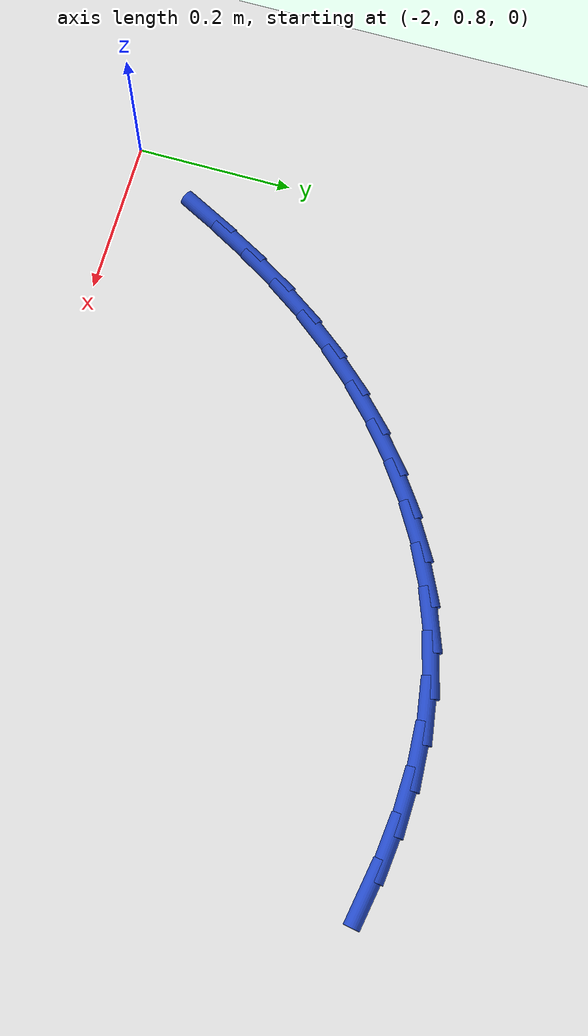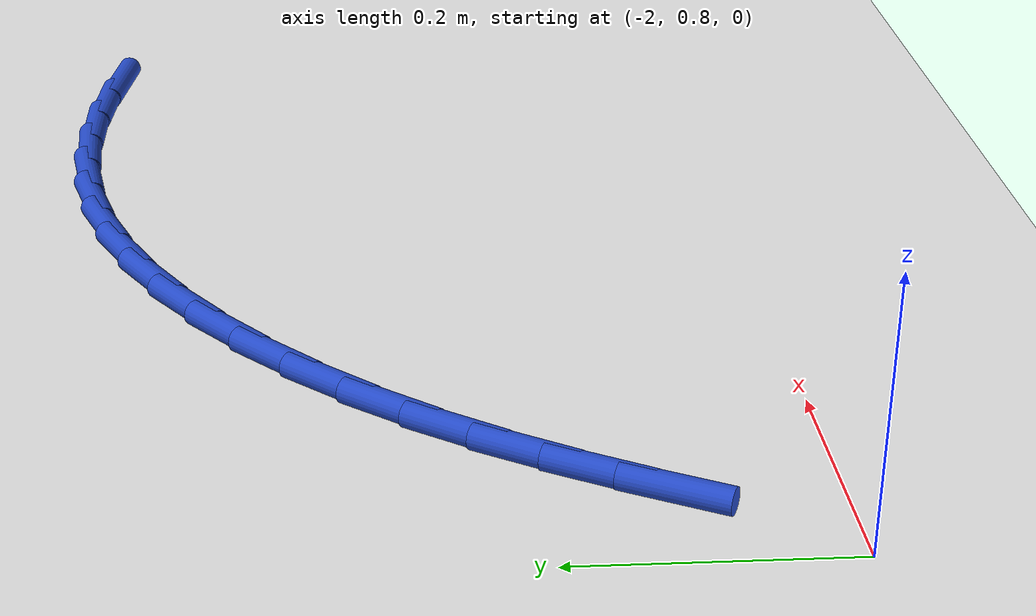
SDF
<sdf version="1.6">
 <world name="default">
  <model name="ground_plane">
   <static>1</static>
   <link name="link">
    <collision name="collision">
     <geometry><plane><normal>0 0 1</normal><size>100 100</size></plane></geometry>
     <surface><friction><ode><mu>100</mu><mu2>50</mu2></ode></friction></surface>
    </collision>
    <visual name="visual">
     <cast_shadows>0</cast_shadows>
     <geometry><plane><normal>0 0 1</normal><size>100 100</size></plane></geometry>
     <material>
      <script><uri>file://media/materials/scripts/gazebo.material</uri><name>Gazebo/WhiteGlow</name></script>
     </material>
    </visual>
   </link>
  </model>
  <model name="line">
   <link name="link_35">
    <pose>-1.183106454513405 1.3187488342028129 0.01 0 1.57 -0.17814583061397482</pose>
    <collision name="collision">
     <geometry><cylinder><radius>0.01</radius><length>0.08</length></cylinder></geometry>
    </collision>
    <visual name="visual">
     <material>
      <script><name>Gazebo/Blue</name><uri>file://media/materials/scripts/gazebo.material</uri></script>
     </material>
     <geometry><cylinder><radius>0.01</radius><length>0.08</length></cylinder></geometry>
    </visual>
   </link>
   <link name="link_36">
    <pose>-1.2368201212194503 1.3284202273314685 0.01 0 1.57 -0.10851438034527704</pose>
    <collision name="collision">
     <geometry><cylinder><radius>0.01</radius><length>0.08</length></cylinder></geometry>
    </collision>
    <visual name="visual">
     <material>
      <script><name>Gazebo/Blue</name><uri>file://media/materials/scripts/gazebo.material</uri></script>
     </material>
     <geometry><cylinder><radius>0.01</radius><length>0.08</length></cylinder></geometry>
    </visual>
   </link>
   <link name="link_37">
    <pose>-1.2904987305142765 1.3342681000192689 0.01 0 1.57 -0.0304399568864086</pose>
    <collision name="collision">
     <geometry><cylinder><radius>0.01</radius><length>0.08</length></cylinder></geometry>
    </collision>
    <visual name="visual">
     <material>
      <script><name>Gazebo/Blue</name><uri>file://media/materials/scripts/gazebo.material</uri></script>
     </material>
     <geometry><cylinder><radius>0.01</radius><length>0.08</length></cylinder></geometry>
    </visual>
   </link>
   <link name="link_38">
    <pose>-1.3438997265203696 1.3358941262868336 0.01 0 1.57 0.056560247076168094</pose>
    <collision name="collision">
     <geometry><cylinder><radius>0.01</radius><length>0.08</length></cylinder></geometry>
    </collision>
    <visual name="visual">
     <material>
      <script><name>Gazebo/Blue</name><uri>file://media/materials/scripts/gazebo.material</uri></script>
     </material>
     <geometry><cylinder><radius>0.01</radius><length>0.08</length></cylinder></geometry>
    </visual>
   </link>
   <link name="link_39">
    <pose>-1.396780553360217 1.3328999801547825 0.01 0 1.57 0.1525457686673668</pose>
    <collision name="collision">
     <geometry><cylinder><radius>0.01</radius><length>0.08</length></cylinder></geometry>
    </collision>
    <visual name="visual">
     <material>
      <script><name>Gazebo/Blue</name><uri>file://media/materials/scripts/gazebo.material</uri></script>
     </material>
     <geometry><cylinder><radius>0.01</radius><length>0.08</length></cylinder></geometry>
    </visual>
   </link>
   <link name="link_40">
    <pose>-1.4488986551563034 1.324887335643735 0.01 0 1.57 0.2562113360007099</pose>
    <collision name="collision">
     <geometry><cylinder><radius>0.01</radius><length>0.08</length></cylinder></geometry>
    </collision>
    <visual name="visual">
     <material>
      <script><name>Gazebo/Blue</name><uri>file://media/materials/scripts/gazebo.material</uri></script>
     </material>
     <geometry><cylinder><radius>0.01</radius><length>0.08</length></cylinder></geometry>
    </visual>
   </link>
   <link name="link_41">
    <pose>-1.5000110005244143 1.3114974943905264 0.01 0 1.57 0.3578988697251491</pose>
    <collision name="collision">
     <geometry><cylinder><radius>0.01</radius><length>0.08</length></cylinder></geometry>
    </collision>
    <visual name="visual">
     <material>
      <script><name>Gazebo/Blue</name><uri>file://media/materials/scripts/gazebo.material</uri></script>
     </material>
     <geometry><cylinder><radius>0.01</radius><length>0.08</length></cylinder></geometry>
    </visual>
   </link>
   <link name="link_42">
    <pose>-1.549868814959661 1.2928503762725883 0.01 0 1.57 0.45185800154394207</pose>
    <collision name="collision">
     <geometry><cylinder><radius>0.01</radius><length>0.08</length></cylinder></geometry>
    </collision>
    <visual name="visual">
     <material>
      <script><name>Gazebo/Blue</name><uri>file://media/materials/scripts/gazebo.material</uri></script>
     </material>
     <geometry><cylinder><radius>0.01</radius><length>0.08</length></cylinder></geometry>
    </visual>
   </link>
   <link name="link_43">
    <pose>-1.5982195138273476 1.269383428471747 0.01 0 1.57 0.5386670216102631</pose>
    <collision name="collision">
     <geometry><cylinder><radius>0.01</radius><length>0.08</length></cylinder></geometry>
    </collision>
    <visual name="visual">
     <material>
      <script><name>Gazebo/Blue</name><uri>file://media/materials/scripts/gazebo.material</uri></script>
     </material>
     <geometry><cylinder><radius>0.01</radius><length>0.08</length></cylinder></geometry>
    </visual>
   </link>
   <link name="link_44">
    <pose>-1.6448104441073668 1.2415397972500997 0.01 0 1.57 0.619288919932608</pose>
    <collision name="collision">
     <geometry><cylinder><radius>0.01</radius><length>0.08</length></cylinder></geometry>
    </collision>
    <visual name="visual">
     <material>
      <script><name>Gazebo/Blue</name><uri>file://media/materials/scripts/gazebo.material</uri></script>
     </material>
     <geometry><cylinder><radius>0.01</radius><length>0.08</length></cylinder></geometry>
    </visual>
   </link>
   <link name="link_45">
    <pose>-1.6893889527796087 1.2097626288697438 0.01 0 1.57 0.6948270344642553</pose>
    <collision name="collision">
     <geometry><cylinder><radius>0.01</radius><length>0.08</length></cylinder></geometry>
    </collision>
    <visual name="visual">
     <material>
      <script><name>Gazebo/Blue</name><uri>file://media/materials/scripts/gazebo.material</uri></script>
     </material>
     <geometry><cylinder><radius>0.01</radius><length>0.08</length></cylinder></geometry>
    </visual>
   </link>
   <link name="link_46">
    <pose>-1.7317023868239667 1.174495069592777 0.01 0 1.57 0.7664413663883005</pose>
    <collision name="collision">
     <geometry><cylinder><radius>0.01</radius><length>0.08</length></cylinder></geometry>
    </collision>
    <visual name="visual">
     <material>
      <script><name>Gazebo/Blue</name><uri>file://media/materials/scripts/gazebo.material</uri></script>
     </material>
     <geometry><cylinder><radius>0.01</radius><length>0.08</length></cylinder></geometry>
    </visual>
   </link>
   <link name="link_47">
    <pose>-1.7714980932203312 1.136180265681297 0.01 0 1.57 0.8353100413842313</pose>
    <collision name="collision">
     <geometry><cylinder><radius>0.01</radius><length>0.08</length></cylinder></geometry>
    </collision>
    <visual name="visual">
     <material>
      <script><name>Gazebo/Blue</name><uri>file://media/materials/scripts/gazebo.material</uri></script>
     </material>
     <geometry><cylinder><radius>0.01</radius><length>0.08</length></cylinder></geometry>
    </visual>
   </link>
   <link name="link_48">
    <pose>-1.8085234189485961 1.0952613633974007 0.01 0 1.57 0.9026230247563491</pose>
    <collision name="collision">
     <geometry><cylinder><radius>0.01</radius><length>0.08</length></cylinder></geometry>
    </collision>
    <visual name="visual">
     <material>
      <script><name>Gazebo/Blue</name><uri>file://media/materials/scripts/gazebo.material</uri></script>
     </material>
     <geometry><cylinder><radius>0.01</radius><length>0.08</length></cylinder></geometry>
    </visual>
   </link>
   <link name="link_49">
    <pose>-1.8425257109886508 1.0521815090031863 0.01 0 1.57 0.9679688689596162</pose>
    <collision name="collision">
     <geometry><cylinder><radius>0.01</radius><length>0.08</length></cylinder></geometry>
    </collision>
    <visual name="visual">
     <material>
      <script><name>Gazebo/Blue</name><uri>file://media/materials/scripts/gazebo.material</uri></script>
     </material>
     <geometry><cylinder><radius>0.01</radius><length>0.08</length></cylinder></geometry>
    </visual>
   </link>
   <link name="link_50">
    <pose>-1.8733649649941562 1.0073762686741925 0.01 0 1.57 1.0236584556788226</pose>
    <collision name="collision">
     <geometry><cylinder><radius>0.01</radius><length>0.08</length></cylinder></geometry>
    </collision>
    <visual name="visual">
     <material>
      <script><name>Gazebo/Blue</name><uri>file://media/materials/scripts/gazebo.material</uri></script>
     </material>
     <geometry><cylinder><radius>0.01</radius><length>0.08</length></cylinder></geometry>
    </visual>
   </link>
   <link name="link_51">
    <pose>-1.901468121589287 0.9612430590737892 0.01 0 1.57 1.0666442975080075</pose>
    <collision name="collision">
     <geometry><cylinder><radius>0.01</radius><length>0.08</length></cylinder></geometry>
    </collision>
    <visual name="visual">
     <material>
      <script><name>Gazebo/Blue</name><uri>file://media/materials/scripts/gazebo.material</uri></script>
     </material>
     <geometry><cylinder><radius>0.01</radius><length>0.08</length></cylinder></geometry>
    </visual>
   </link>
   <link name="link_52">
    <pose>-1.9274400867317472 0.9141673216455107 0.01 0 1.57 1.096635000104698</pose>
    <collision name="collision">
     <geometry><cylinder><radius>0.01</radius><length>0.08</length></cylinder></geometry>
    </collision>
    <visual name="visual">
     <material>
      <script><name>Gazebo/Blue</name><uri>file://media/materials/scripts/gazebo.material</uri></script>
     </material>
     <geometry><cylinder><radius>0.01</radius><length>0.08</length></cylinder></geometry>
    </visual>
   </link>
  </model>
 </world>
</sdf>
